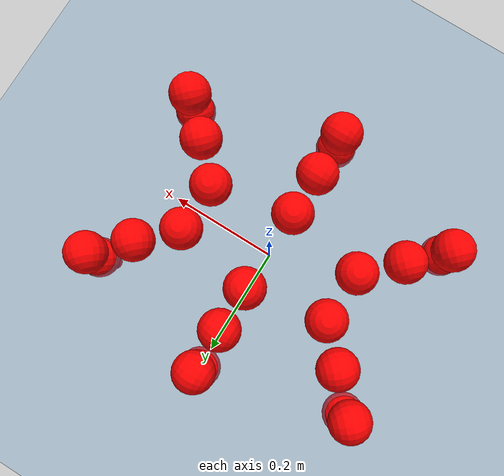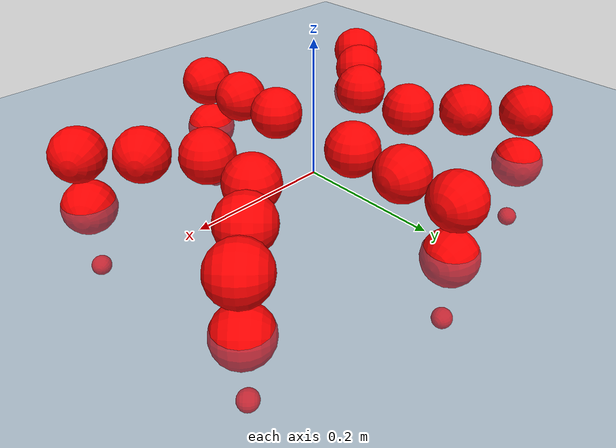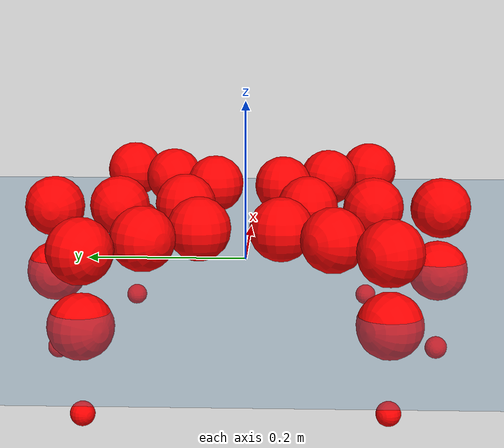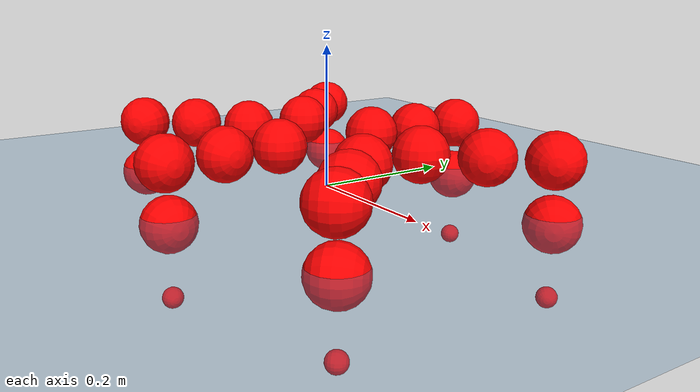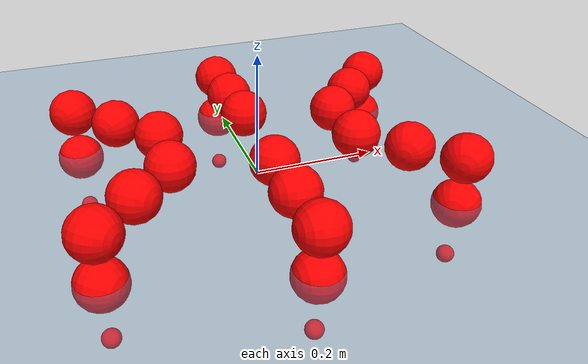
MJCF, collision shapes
<mujoco model="Golem">
  <compiler angle="radian" assetdir="assets" balanceinertia="true" inertiafromgeom="false"/>

  <option timestep="0.005" density="1.2" viscosity="2e-05"/>

  <size nkey="1"/>

  <visual>
    <quality shadowsize="8192"/>
    <map shadowclip="0.5"/>
  </visual>

  <default>
    <default class="/">
      <joint armature="0.01" damping="0.01" frictionloss="0.01"/>
      <geom contype="0" conaffinity="0" group="1" solref="-1000 -80"/>
      <site size="0.01 0.005 0.005" group="5"/>
      <general forcelimited="true" biastype="affine" gainprm="25" biasprm="0 -25 -0.5"/>
      <default class="visual">
        <geom type="mesh" group="2"/>
      </default>
      <default class="collision">
        <geom group="3"/>
      </default>
      <default class="foot">
        <geom size="0.01 0 0" condim="6" group="4" priority="1" solimp="0.015 1 0.01"/>
      </default>
      <default class="reward_collision_sphere">
        <geom group="5" rgba="1 0 0 1"/>
      </default>
    </default>
  </default>

  <asset>
    <texture type="skybox" colorspace="auto" name="//unnamed_texture_0" builtin="gradient" rgb1="0.95 0.95 0.95" rgb2="0.95 0.95 0.95" width="100" height="600"/>
    <texture type="2d" colorspace="auto" name="texplane" builtin="checker" rgb1="0.345 0.575 0.748" rgb2="0.345 0.575 0.748" markrgb="1 1 1" width="512" height="512"/>
    <material name="MatPlane" class="/" texture="texplane" texuniform="true" texrepeat="2 2" specular="0.9"/>
    <mesh name="body" class="/" file="body.stl" scale="0.001 0.001 0.001"/>
    <mesh name="coxa" class="/" file="coxa.stl" scale="0.001 0.001 0.001"/>
    <mesh name="femur" class="/" file="femur.stl" scale="0.001 0.001 0.001"/>
    <mesh name="tibia" class="/" file="tibia.stl" scale="0.001 0.001 0.001"/>
    <mesh name="tarsus" class="/" file="tarsus.stl" scale="0.001 0.001 0.001"/>
  </asset>

  <worldbody>
    <geom name="floor" class="/" size="100 100 0.125" type="plane" group="0" material="MatPlane"/>
    <light name="toplight_shadow" class="/" pos="0 0 5" dir="0.0990148 0.0990148 -0.990148" type="directional" ambient="0.04 0.04 0.04" diffuse="0.55 0.55 0.55" specular="0.12 0.12 0.12"/>
    <light name="toplight_fill" class="/" pos="0 0 5" dir="0.0990148 0.0990148 -0.990148" type="directional" castshadow="false" ambient="0.04 0.04 0.04" diffuse="0.3 0.3 0.3" specular="0.08 0.08 0.08"/>
    <body name="trunk" pos="0.000958278 0.000363411 -0.00192888" quat="1 -7.46321e-05 0.000108515 3.87205e-05">
      <inertial pos="-0.00037461 -0.000296295 -0.00293915" quat="0.999999 0.000657762 9.48046e-05 -0.000796089" mass="3.19189" diaginertia="0.00712028 0.00314498 0.0171593"/>
      <joint name="//unnamed_joint_0" type="free"/>
      <geom name="//unnamed_geom_1" class="/" pos="0 0 0.0714135" quat="1 0 0 0" type="mesh" rgba="0.9 0.9 0.9 1" mesh="body"/>
      <site name="imu" class="/" pos="0.124098 -0.00262345 0.108684" size="0.00948935"/>
      <camera name="track" class="/" pos="0 -1.5848 0" quat="0.707107 0.707107 0 0" mode="trackcom"/>
      <camera name="ego_camera" class="/" pos="0.122014 0 0.111584" quat="-0.5 -0.5 0.5 0.5"/>
      <body name="coxa_RR" pos="-0.168197 -0.06704 0.0710397" quat="0.382735 -8.33774e-05 -0.000129106 -0.923858">
        <inertial pos="0.000325126 -0.00179327 0.000809864" quat="1 -3.0404e-05 -7.01873e-06 7.45018e-05" mass="0.166541" diaginertia="0.00707614 0.00308435 0.0166362"/>
        <joint name="coxa_joint_RR" class="/" pos="0 0 0" axis="0.00100744 -0.00646059 -0.999979" range="-3.13806 3.14081" armature="0.00980152" damping="0.0141428" frictionloss="0.00973776"/>
        <geom name="//unnamed_geom_2" class="/" type="mesh" rgba="0.2 0.2 0.2 1" mesh="coxa"/>
        <geom name="//unnamed_geom_3" class="reward_collision_sphere" size="0.0379574" pos="-0.0281571 0 0"/>
        <body name="femur_RR" pos="0.057381 -0.000884103 0.000652736" quat="0.499992 -0.49997 0.500004 0.500034">
          <inertial pos="0.000343794 -0.000705379 0.000801215" quat="1 3.80418e-05 0.000112281 3.92447e-05" mass="0.170564" diaginertia="0.00723492 0.00309593 0.0172302"/>
          <joint name="femur_joint_RR" class="/" pos="0 0 0" axis="0.00236243 0.000136323 -0.999997" stiffness="0.00144717" range="-3.14763 3.10853" armature="0.00952214" damping="0.00187415" frictionloss="0.00954765"/>
          <geom name="//unnamed_geom_4" class="/" type="mesh" rgba="0.9 0.9 0.9 1" mesh="femur"/>
          <geom name="//unnamed_geom_5" class="reward_collision_sphere" size="0.0379574"/>
          <body name="tibia_RR" pos="0.00115833 -0.0852746 0.0013445" quat="-9.68899e-05 1 -0.000128526 -0.000384106">
            <inertial pos="-0.000990135 0.000503221 -0.000110582" quat="0.999998 -0.00188032 0.000685521 -0.000196504" mass="0.1706" diaginertia="0.00721774 0.00309957 0.0171539"/>
            <joint name="tibia_joint_RR" class="/" pos="0 0 0" axis="-0.00454256 -0.00381775 0.999982" range="-3.17527 3.15921" armature="0.00935912" damping="0" frictionloss="0.00974246"/>
            <geom name="//unnamed_geom_6" class="/" type="mesh" rgba="0.2 0.2 0.2 1" mesh="tibia"/>
            <geom name="//unnamed_geom_7" class="reward_collision_sphere" size="0.0379574"/>
            <body name="tarsus_RR" pos="0.0811537 0.00153783 0.00063571" quat="1 0.000187838 -0.000191058 -2.45065e-05">
              <inertial pos="0.0558325 0.0018257 -0.000220321" quat="0.49751 0.503942 0.500122 0.498402" mass="0.170908" diaginertia="0.00733692 0.0031022 0.017357"/>
              <joint name="tarsus_joint_RR" class="/" pos="0 0 0" axis="-6.50146e-05 0.00149387 0.999999" range="-3.12945 3.13789" armature="0.00964833" damping="0.0084355" frictionloss="0.00977442"/>
              <geom name="//unnamed_geom_8" class="/" type="mesh" rgba="0.9 0.9 0.9 1" mesh="tarsus"/>
              <geom name="foot_1" class="foot" size="0.00938622" pos="0.10512 0 0" quat="0 -0.707107 0 0.707107"/>
              <geom name="//unnamed_geom_10" class="reward_collision_sphere" size="0.0379574"/>
              <geom name="//unnamed_geom_11" class="reward_collision_sphere" size="0.014234" pos="0.100896 0 0"/>
              <site name="foot_1" class="foot" pos="0.10512 0 0" quat="0 -0.707107 0 0.707107" size="0.00948935"/>
            </body>
          </body>
        </body>
      </body>
      <body name="coxa_RM" pos="-0.000494215 -0.106113 0.0697585" quat="0.70774 -0.000463694 -0.000349284 -0.706473">
        <inertial pos="-0.00101112 0.000154788 0.00134392" quat="0.999997 -0.00142178 -0.0016403 -0.000832615" mass="0.16887" diaginertia="0.00707305 0.00307157 0.0175005"/>
        <joint name="coxa_joint_RM" class="/" pos="0 0 0" axis="0.000209199 2.25357e-05 -1" range="-3.18163 3.13607" armature="0.0100645" damping="0.0140989" frictionloss="0.00943649"/>
        <geom name="//unnamed_geom_12" class="/" type="mesh" rgba="0.2 0.2 0.2 1" mesh="coxa"/>
        <geom name="//unnamed_geom_13" class="reward_collision_sphere" size="0.0379574" pos="-0.0281571 0 0"/>
        <body name="femur_RM" pos="0.0543445 -9.08017e-06 -0.000927868" quat="0.499658 -0.500256 0.499699 0.500386">
          <inertial pos="-0.000892143 0.00093657 -0.000939184" quat="0.999981 -0.000229375 0.00391523 -0.00484502" mass="0.17215" diaginertia="0.00734104 0.00313006 0.0173533"/>
          <joint name="femur_joint_RM" class="/" pos="0 0 0" axis="0.000662499 0.000589496 -1" range="-3.13323 3.1366" armature="0.00969472" damping="0.0111243" frictionloss="0.00996915"/>
          <geom name="//unnamed_geom_14" class="/" type="mesh" rgba="0.9 0.9 0.9 1" mesh="femur"/>
          <geom name="//unnamed_geom_15" class="reward_collision_sphere" size="0.0379574"/>
          <body name="tibia_RM" pos="0.000328552 -0.0842071 0.000885488" quat="-1.32519e-05 1 0.000124905 8.45907e-05">
            <inertial pos="0.00121828 0.00138526 -6.83467e-05" quat="1 -0.000243305 0.000856922 0.000138749" mass="0.175149" diaginertia="0.00743586 0.00319696 0.0175556"/>
            <joint name="tibia_joint_RM" class="/" pos="0 0 0" axis="0.00270078 -0.00132944 0.999995" range="-3.1396 3.0931" armature="0.00914167" damping="0" frictionloss="0.00959479"/>
            <geom name="//unnamed_geom_16" class="/" type="mesh" rgba="0.2 0.2 0.2 1" mesh="tibia"/>
            <geom name="//unnamed_geom_17" class="reward_collision_sphere" size="0.0379574"/>
            <body name="tarsus_RM" pos="0.0806014 -0.00181778 -0.000335261" quat="1 2.37772e-05 9.4732e-05 -6.17496e-05">
              <inertial pos="0.0553211 0.00236104 -0.000854085" quat="0.499812 0.499719 0.500165 0.500304" mass="0.165987" diaginertia="0.0072676 0.00311324 0.0174504"/>
              <joint name="tarsus_joint_RM" class="/" pos="0 0 0" axis="-0.00368392 -0.00126857 0.999992" range="-3.13306 3.13777" armature="0.00923225" damping="0.00511323" frictionloss="0.009506"/>
              <geom name="//unnamed_geom_18" class="/" type="mesh" rgba="0.9 0.9 0.9 1" mesh="tarsus"/>
              <geom name="foot_2" class="foot" size="0.00919366" pos="0.10512 0 0" quat="0 -0.707107 0 0.707107"/>
              <geom name="//unnamed_geom_20" class="reward_collision_sphere" size="0.0379574"/>
              <geom name="//unnamed_geom_21" class="reward_collision_sphere" size="0.014234" pos="0.100896 0 0"/>
              <site name="foot_2" class="foot" pos="0.10512 0 0" quat="0 -0.707107 0 0.707107" size="0.00948935"/>
            </body>
          </body>
        </body>
      </body>
      <body name="coxa_RF" pos="0.167029 -0.0649736 0.0708597" quat="0.923879 6.40009e-06 -6.80534e-06 -0.382685">
        <inertial pos="-0.00129397 -0.000405698 0.00115295" quat="0.999995 -0.00263737 -0.00131088 -0.000715313" mass="0.174006" diaginertia="0.00751358 0.00312086 0.0178147"/>
        <joint name="coxa_joint_RF" class="/" pos="0 0 0" axis="0.00167212 0.00522095 -0.999985" range="-3.12926 3.14" armature="0.00914923" damping="0.00207318" frictionloss="0.00932569"/>
        <geom name="//unnamed_geom_22" class="/" type="mesh" rgba="0.2 0.2 0.2 1" mesh="coxa"/>
        <geom name="//unnamed_geom_23" class="reward_collision_sphere" size="0.0379574" pos="-0.0281571 0 0"/>
        <body name="femur_RF" pos="0.0572008 -0.00159131 -8.69544e-05" quat="0.499392 -0.500132 0.500229 0.500247">
          <inertial pos="-0.000444802 0.000885293 0.000623417" quat="0.999997 0.00253901 0.000175058 -0.000129425" mass="0.16406" diaginertia="0.00724092 0.00306936 0.0169434"/>
          <joint name="femur_joint_RF" class="/" pos="0 0 0" axis="-0.0012745 -0.000158913 -0.999999" range="-3.16009 3.10364" armature="0.00849719" damping="0.00691684" frictionloss="0.00848819"/>
          <geom name="//unnamed_geom_24" class="/" type="mesh" rgba="0.9 0.9 0.9 1" mesh="femur"/>
          <geom name="//unnamed_geom_25" class="reward_collision_sphere" size="0.0379574"/>
          <body name="tibia_RF" pos="-0.000453561 -0.0837258 0.00151373" quat="-0.000134152 1 -0.000121387 9.17543e-05">
            <inertial pos="-0.00156211 0.000239071 -5.79288e-05" quat="0.999999 0.000531237 -0.000941116 0.000137964" mass="0.172551" diaginertia="0.00724942 0.00313134 0.0173348"/>
            <joint name="tibia_joint_RF" class="/" pos="0 0 0" axis="-0.0012088 -0.00059799 0.999999" range="-3.14626 3.14335" armature="0.00942364" damping="0" frictionloss="0.00923545"/>
            <geom name="//unnamed_geom_26" class="/" type="mesh" rgba="0.2 0.2 0.2 1" mesh="tibia"/>
            <geom name="//unnamed_geom_27" class="reward_collision_sphere" size="0.0379574"/>
            <body name="tarsus_RF" pos="0.0810824 -0.00174519 -0.000833386" quat="1 -3.5651e-05 1.3983e-05 -2.54978e-05">
              <inertial pos="0.055103 0.000728784 -3.82573e-05" quat="0.505818 0.497594 0.491892 0.50457" mass="0.172464" diaginertia="0.00735033 0.00316116 0.0170525"/>
              <joint name="tarsus_joint_RF" class="/" pos="0 0 0" axis="0.000606682 0.000480986 1" stiffness="0.000149229" range="-3.13157 3.14273" armature="0.00859327" damping="0.00418391" frictionloss="0.00895455"/>
              <geom name="//unnamed_geom_28" class="/" type="mesh" rgba="0.9 0.9 0.9 1" mesh="tarsus"/>
              <geom name="foot_3" class="foot" size="0.00935899" pos="0.10512 0 0" quat="0 -0.707107 0 0.707107"/>
              <geom name="//unnamed_geom_30" class="reward_collision_sphere" size="0.0379574"/>
              <geom name="//unnamed_geom_31" class="reward_collision_sphere" size="0.014234" pos="0.100896 0 0"/>
              <site name="foot_3" class="foot" pos="0.10512 0 0" quat="0 -0.707107 0 0.707107" size="0.00948935"/>
            </body>
          </body>
        </body>
      </body>
      <body name="coxa_LR" pos="-0.165914 0.0689003 0.0705996" quat="0.382669 -1.19365e-05 1.98853e-06 0.923885">
        <inertial pos="-0.000919698 -2.10576e-05 6.52683e-06" quat="0.999957 0.00424238 0.0058719 0.00570455" mass="0.173258" diaginertia="0.00724742 0.00316118 0.0172744"/>
        <joint name="coxa_joint_LR" class="/" pos="0 0 0" axis="0.00186333 -0.00152547 -0.999997" range="-3.13318 3.12049" armature="0.00981043" damping="0.0112142" frictionloss="0.00902825"/>
        <geom name="//unnamed_geom_32" class="/" type="mesh" rgba="0.2 0.2 0.2 1" mesh="coxa"/>
        <geom name="//unnamed_geom_33" class="reward_collision_sphere" size="0.0379574" pos="-0.0281571 0 0"/>
        <body name="femur_LR" pos="0.0555877 -0.00150477 0.000182135" quat="0.499974 -0.500027 0.499973 0.500027">
          <inertial pos="-0.00126216 -0.00188268 0.00152776" quat="1 0.000130673 -4.65808e-05 0.000448863" mass="0.172803" diaginertia="0.00714149 0.00314758 0.0173226"/>
          <joint name="femur_joint_LR" class="/" pos="0 0 0" axis="0.00513943 -0.00859623 0.99995" range="-3.14245 3.13005" armature="0.0105721" damping="0.00414245" frictionloss="0.00899909"/>
          <geom name="//unnamed_geom_34" class="/" type="mesh" rgba="0.9 0.9 0.9 1" mesh="femur"/>
          <geom name="//unnamed_geom_35" class="reward_collision_sphere" size="0.0379574"/>
          <body name="tibia_LR" pos="0.0010249 -0.088043 -0.000879577" quat="6.38891e-06 1 0.000152472 -0.000198814">
            <inertial pos="-0.000437947 -0.00156339 0.000333729" quat="0.999992 1.07725e-05 0.00308772 0.00254432" mass="0.169423" diaginertia="0.00730593 0.00309054 0.0168411"/>
            <joint name="tibia_joint_LR" class="/" pos="0 0 0" axis="-0.00525968 0.0026147 -0.999983" range="-3.13599 3.11069" armature="0.00944817" damping="0" frictionloss="0.00952568"/>
            <geom name="//unnamed_geom_36" class="/" type="mesh" rgba="0.2 0.2 0.2 1" mesh="tibia"/>
            <geom name="//unnamed_geom_37" class="reward_collision_sphere" size="0.0379574"/>
            <body name="tarsus_LR" pos="0.0856861 4.0772e-05 0.000831654" quat="1 5.27084e-05 -2.5408e-05 1.04351e-05">
              <inertial pos="0.0584838 -0.000629044 -0.00041732" quat="0.499787 0.500558 0.499963 0.499691" mass="0.171679" diaginertia="0.00727404 0.00311085 0.017245"/>
              <joint name="tarsus_joint_LR" class="/" pos="0 0 0" axis="-0.00139014 0.00472795 -0.999988" range="-3.15164 3.12995" armature="0.00904726" damping="0.0276434" frictionloss="0.00946972"/>
              <geom name="//unnamed_geom_38" class="/" type="mesh" rgba="0.9 0.9 0.9 1" mesh="tarsus"/>
              <geom name="foot_4" class="foot" size="0.00947456" pos="0.10512 0 0" quat="0.707107 0 -0.707107 0"/>
              <geom name="//unnamed_geom_40" class="reward_collision_sphere" size="0.0379574"/>
              <geom name="//unnamed_geom_41" class="reward_collision_sphere" size="0.014234" pos="0.100896 0 0"/>
              <site name="foot_4" class="foot" pos="0.10512 0 0" quat="0.707107 0 -0.707107 0" size="0.00948935"/>
            </body>
          </body>
        </body>
      </body>
      <body name="coxa_LM" pos="0.00139745 0.103887 0.0717164" quat="0.70725 -3.54087e-06 0.000145626 0.706963">
        <inertial pos="0.00012392 -0.00104509 -0.00058372" quat="0.999993 0.00153879 -0.000145362 -0.00350251" mass="0.167842" diaginertia="0.00732885 0.00314617 0.0170693"/>
        <joint name="coxa_joint_LM" class="/" pos="0 0 0" axis="-0.00624769 0.00377344 -0.999973" range="-3.15874 3.18068" armature="0.0095152" damping="0.0106518" frictionloss="0.00962048"/>
        <geom name="//unnamed_geom_42" class="/" type="mesh" rgba="0.2 0.2 0.2 1" mesh="coxa"/>
        <geom name="//unnamed_geom_43" class="reward_collision_sphere" size="0.0379574" pos="-0.0281571 0 0"/>
        <body name="femur_LM" pos="0.0548213 0.00106206 -0.00245102" quat="0.499487 -0.500097 0.500435 0.49998">
          <inertial pos="0.000337572 -0.000599247 -0.000113516" quat="0.999999 -0.000525856 0.000654603 0.00135302" mass="0.176245" diaginertia="0.00737134 0.00314784 0.0176004"/>
          <joint name="femur_joint_LM" class="/" pos="0 0 0" axis="0.000245121 3.49072e-05 1" stiffness="0.00593885" range="-3.173 3.10745" armature="0.00907677" damping="0" frictionloss="0.00952433"/>
          <geom name="//unnamed_geom_44" class="/" type="mesh" rgba="0.9 0.9 0.9 1" mesh="femur"/>
          <geom name="//unnamed_geom_45" class="reward_collision_sphere" size="0.0379574"/>
          <body name="tibia_LM" pos="0.000714087 -0.0823587 0.000506354" quat="-0.000413471 1 -5.05497e-05 -0.000266454">
            <inertial pos="-4.92795e-05 -0.00140967 -0.00010248" quat="0.999987 0.00223583 -0.00099646 0.00436608" mass="0.167737" diaginertia="0.00726914 0.00302465 0.0170979"/>
            <joint name="tibia_joint_LM" class="/" pos="0 0 0" axis="0.000973937 0.000620312 -0.999999" range="-3.14 3.14296" armature="0.00881413" damping="0" frictionloss="0.00958777"/>
            <geom name="//unnamed_geom_46" class="/" type="mesh" rgba="0.2 0.2 0.2 1" mesh="tibia"/>
            <geom name="//unnamed_geom_47" class="reward_collision_sphere" size="0.0379574"/>
            <body name="tarsus_LM" pos="0.0836478 -0.000359764 -0.000504824" quat="1 -0.000161779 0.000186129 5.4261e-05">
              <inertial pos="0.0568443 0.000496059 0.000811373" quat="0.498648 0.501898 0.497241 0.502195" mass="0.17308" diaginertia="0.00710472 0.00315841 0.0173406"/>
              <joint name="tarsus_joint_LM" class="/" pos="0 0 0" axis="-0.00101693 0.001044 -0.999999" range="-3.11939 3.13749" armature="0.0092366" damping="0" frictionloss="0.00943443"/>
              <geom name="//unnamed_geom_48" class="/" type="mesh" rgba="0.9 0.9 0.9 1" mesh="tarsus"/>
              <geom name="foot_5" class="foot" size="0.00879137" pos="0.10512 0 0" quat="0.707107 0 -0.707107 0"/>
              <geom name="//unnamed_geom_50" class="reward_collision_sphere" size="0.0379574"/>
              <geom name="//unnamed_geom_51" class="reward_collision_sphere" size="0.014234" pos="0.100896 0 0"/>
              <site name="foot_5" class="foot" pos="0.10512 0 0" quat="0.707107 0 -0.707107 0" size="0.00948935"/>
            </body>
          </body>
        </body>
      </body>
      <body name="coxa_LF" pos="0.168879 0.0663975 0.0712642" quat="0.923857 0.000477484 0.000737646 0.382736">
        <inertial pos="0.000247669 0.000252147 0.000953044" quat="0.999995 -0.000851637 -0.000393059 0.00315011" mass="0.173517" diaginertia="0.00735175 0.00307214 0.0175187"/>
        <joint name="coxa_joint_LF" class="/" pos="0 0 0" axis="-0.00161362 -0.00777293 -0.999968" range="-3.13929 3.14857" armature="0.0097216" damping="0.00258158" frictionloss="0.00905604"/>
        <geom name="//unnamed_geom_52" class="/" type="mesh" rgba="0.2 0.2 0.2 1" mesh="coxa"/>
        <geom name="//unnamed_geom_53" class="reward_collision_sphere" size="0.0379574" pos="-0.0281571 0 0"/>
        <body name="femur_LF" pos="0.0564712 0.000924939 0.000187055" quat="0.499721 -0.500297 0.499878 0.500104">
          <inertial pos="0.000112218 -0.000203459 0.00160935" quat="1 -0.000221138 -0.000105945 0.000211789" mass="0.176114" diaginertia="0.00723986 0.00315025 0.0173372"/>
          <joint name="femur_joint_LF" class="/" pos="0 0 0" axis="-0.00332746 -0.000614106 0.999994" range="-3.12931 3.14176" armature="0.00957987" damping="0.00218089" frictionloss="0.0101079"/>
          <geom name="//unnamed_geom_54" class="/" type="mesh" rgba="0.9 0.9 0.9 1" mesh="femur"/>
          <geom name="//unnamed_geom_55" class="reward_collision_sphere" size="0.0379574"/>
          <body name="tibia_LF" pos="0.000276135 -0.0839284 0.0017204" quat="-0.000191813 1 -0.000360537 0.000832096">
            <inertial pos="-0.000202693 0.00126573 -0.00143618" quat="0.99996 -0.00103722 0.00890066 -0.000468677" mass="0.17355" diaginertia="0.00728623 0.00313924 0.0173272"/>
            <joint name="tibia_joint_LF" class="/" pos="0 0 0" axis="0.0024058 0.00104763 -0.999997" range="-3.09493 3.12026" armature="0.00928963" damping="0.0102413" frictionloss="0.00945791"/>
            <geom name="//unnamed_geom_56" class="/" type="mesh" rgba="0.2 0.2 0.2 1" mesh="tibia"/>
            <geom name="//unnamed_geom_57" class="reward_collision_sphere" size="0.0379574"/>
            <body name="tarsus_LF" pos="0.0837912 0.00147062 0.000792504" quat="1 7.64685e-05 -0.000161191 0.000380351">
              <inertial pos="0.054704 0.000993006 -0.000474128" quat="0.499591 0.500111 0.500435 0.499863" mass="0.171285" diaginertia="0.00731658 0.0031272 0.0176169"/>
              <joint name="tarsus_joint_LF" class="/" pos="0 0 0" axis="0.0053181 -0.0054958 -0.999971" range="-3.14343 3.1209" armature="0.0101886" damping="0.00943453" frictionloss="0.0105175"/>
              <geom name="//unnamed_geom_58" class="/" type="mesh" rgba="0.9 0.9 0.9 1" mesh="tarsus"/>
              <geom name="foot_6" class="foot" size="0.00918264" pos="0.10512 0 0" quat="0.707107 0 -0.707107 0"/>
              <geom name="//unnamed_geom_60" class="reward_collision_sphere" size="0.0379574"/>
              <geom name="//unnamed_geom_61" class="reward_collision_sphere" size="0.014234" pos="0.100896 0 0"/>
              <site name="foot_6" class="foot" pos="0.10512 0 0" quat="0.707107 0 -0.707107 0" size="0.00948935"/>
            </body>
          </body>
        </body>
      </body>
    </body>
  </worldbody>

  <contact>
    <pair class="/" geom1="floor" geom2="foot_1" name="//unnamed_contact_0"/>
    <pair class="/" geom1="floor" geom2="foot_2" name="//unnamed_contact_1"/>
    <pair class="/" geom1="floor" geom2="foot_3" name="//unnamed_contact_2"/>
    <pair class="/" geom1="floor" geom2="foot_4" name="//unnamed_contact_3"/>
    <pair class="/" geom1="floor" geom2="foot_5" name="//unnamed_contact_4"/>
    <pair class="/" geom1="floor" geom2="foot_6" name="//unnamed_contact_5"/>
  </contact>

  <actuator>
    <general name="coxa_joint_RR" class="/" joint="coxa_joint_RR" forcerange="-6.84789 6.84789" gainprm="23.1408" biasprm="0 -23.1408 -0.496115"/>
    <general name="femur_joint_RR" class="/" joint="femur_joint_RR" forcerange="-7.021 7.021" gainprm="23.1408" biasprm="0 -23.1408 -0.496115"/>
    <general name="tibia_joint_RR" class="/" joint="tibia_joint_RR" forcerange="-6.78703 6.78703" gainprm="23.1408" biasprm="0 -23.1408 -0.496115"/>
    <general name="tarsus_joint_RR" class="/" joint="tarsus_joint_RR" forcerange="-6.69421 6.69421" gainprm="23.1408" biasprm="0 -23.1408 -0.496115"/>
    <general name="coxa_joint_RM" class="/" joint="coxa_joint_RM" forcerange="-6.50039 6.50039" gainprm="23.1408" biasprm="0 -23.1408 -0.496115"/>
    <general name="femur_joint_RM" class="/" joint="femur_joint_RM" forcerange="-6.95962 6.95962" gainprm="23.1408" biasprm="0 -23.1408 -0.496115"/>
    <general name="tibia_joint_RM" class="/" joint="tibia_joint_RM" forcerange="-7.00405 7.00405" gainprm="23.1408" biasprm="0 -23.1408 -0.496115"/>
    <general name="tarsus_joint_RM" class="/" joint="tarsus_joint_RM" forcerange="-6.89001 6.89001" gainprm="23.1408" biasprm="0 -23.1408 -0.496115"/>
    <general name="coxa_joint_RF" class="/" joint="coxa_joint_RF" forcerange="-7.06429 7.06429" gainprm="23.1408" biasprm="0 -23.1408 -0.496115"/>
    <general name="femur_joint_RF" class="/" joint="femur_joint_RF" forcerange="-7.50541 7.50541" gainprm="23.1408" biasprm="0 -23.1408 -0.496115"/>
    <general name="tibia_joint_RF" class="/" joint="tibia_joint_RF" forcerange="-7.38341 7.38341" gainprm="23.1408" biasprm="0 -23.1408 -0.496115"/>
    <general name="tarsus_joint_RF" class="/" joint="tarsus_joint_RF" forcerange="-7.30573 7.30573" gainprm="23.1408" biasprm="0 -23.1408 -0.496115"/>
    <general name="coxa_joint_LR" class="/" joint="coxa_joint_LR" forcerange="-6.91441 6.91441" gainprm="23.1408" biasprm="0 -23.1408 -0.496115"/>
    <general name="femur_joint_LR" class="/" joint="femur_joint_LR" forcerange="-6.84655 6.84655" gainprm="23.1408" biasprm="0 -23.1408 -0.496115"/>
    <general name="tibia_joint_LR" class="/" joint="tibia_joint_LR" forcerange="-7.48232 7.48232" gainprm="23.1408" biasprm="0 -23.1408 -0.496115"/>
    <general name="tarsus_joint_LR" class="/" joint="tarsus_joint_LR" forcerange="-7.3811 7.3811" gainprm="23.1408" biasprm="0 -23.1408 -0.496115"/>
    <general name="coxa_joint_LM" class="/" joint="coxa_joint_LM" forcerange="-6.98054 6.98054" gainprm="23.1408" biasprm="0 -23.1408 -0.496115"/>
    <general name="femur_joint_LM" class="/" joint="femur_joint_LM" forcerange="-6.78799 6.78799" gainprm="23.1408" biasprm="0 -23.1408 -0.496115"/>
    <general name="tibia_joint_LM" class="/" joint="tibia_joint_LM" forcerange="-6.9088 6.9088" gainprm="23.1408" biasprm="0 -23.1408 -0.496115"/>
    <general name="tarsus_joint_LM" class="/" joint="tarsus_joint_LM" forcerange="-7.19311 7.19311" gainprm="23.1408" biasprm="0 -23.1408 -0.496115"/>
    <general name="coxa_joint_LF" class="/" joint="coxa_joint_LF" forcerange="-6.87271 6.87271" gainprm="23.1408" biasprm="0 -23.1408 -0.496115"/>
    <general name="femur_joint_LF" class="/" joint="femur_joint_LF" forcerange="-7.27445 7.27445" gainprm="23.1408" biasprm="0 -23.1408 -0.496115"/>
    <general name="tibia_joint_LF" class="/" joint="tibia_joint_LF" forcerange="-7.1899 7.1899" gainprm="23.1408" biasprm="0 -23.1408 -0.496115"/>
    <general name="tarsus_joint_LF" class="/" joint="tarsus_joint_LF" forcerange="-7.06679 7.06679" gainprm="23.1408" biasprm="0 -23.1408 -0.496115"/>
  </actuator>

  <sensor>
    <gyro site="imu" name="imu_angular_velocity"/>
    <velocimeter site="imu" name="imu_linear_velocity"/>
    <framelinvel objtype="site" objname="foot_1" name="foot_1_global_linear_velocity"/>
    <framelinvel objtype="site" objname="foot_2" name="foot_2_global_linear_velocity"/>
    <framelinvel objtype="site" objname="foot_3" name="foot_3_global_linear_velocity"/>
    <framelinvel objtype="site" objname="foot_4" name="foot_4_global_linear_velocity"/>
    <framelinvel objtype="site" objname="foot_5" name="foot_5_global_linear_velocity"/>
    <framelinvel objtype="site" objname="foot_6" name="foot_6_global_linear_velocity"/>
  </sensor>

  <keyframe>
    <key name="home" qpos="0 0 0.1457 1 0 0 0 0 0 0 0 0 0 0 0 0 0 0 0 0 0 0 0 0 0 0 0 0 0 0 0"/>
  </keyframe>
</mujoco>
